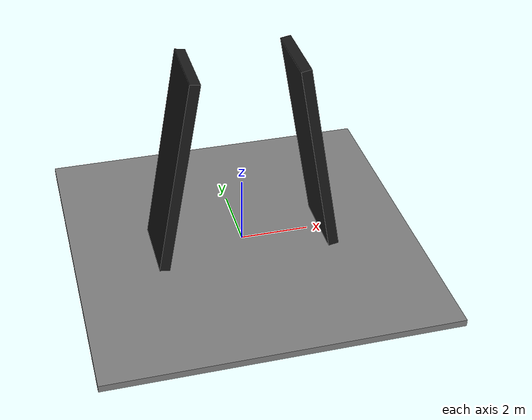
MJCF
<mujoco>
  <option>
    <flag multiccd="enable"/>
  </option>

  <asset>
    <texture type="skybox" builtin="gradient" width="512" height="512"
             rgb1="1 1 1" rgb2="1 1 1"/>
    <mesh name="domino" vertex="-1 -1 -1 1 -1 -1 1 1 -1 1 1 1 1 -1 1 -1 1 -1 -1 1 1 -1 -1 1"
          scale=".15 1 3"/>
  </asset>

  <worldbody>
    <geom type="box" size="5 5 .1" pos="0 0 -.1"/>
    <body pos="-2 0 2.99" euler="0 10 0">
      <freejoint/>
      <geom type="mesh" name="domino1" mesh="domino" rgba=".1 .1 .1 1"/>
    </body>
    <body pos="2 0 2.99" euler="0 -10 0">
      <freejoint/>
      <geom type="mesh" name="domino2" mesh="domino" rgba=".1 .1 .1 1"/>
    </body>
  </worldbody>
</mujoco>
